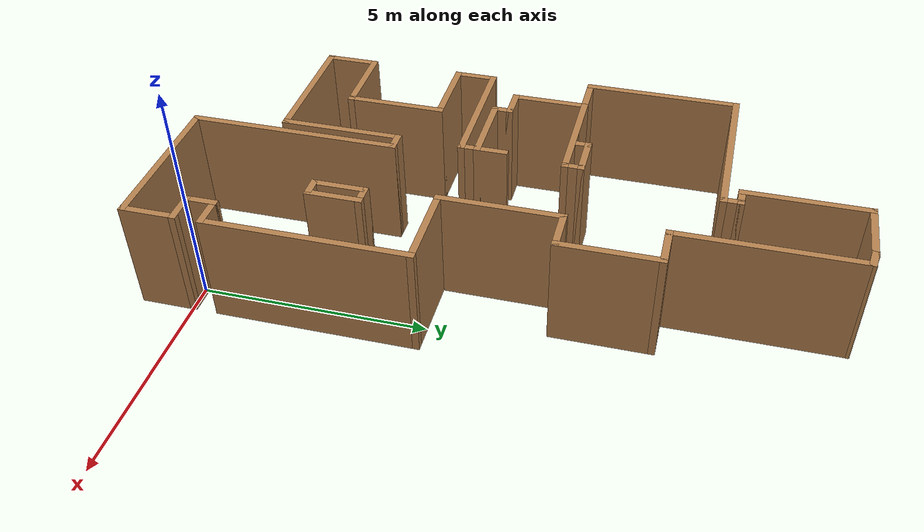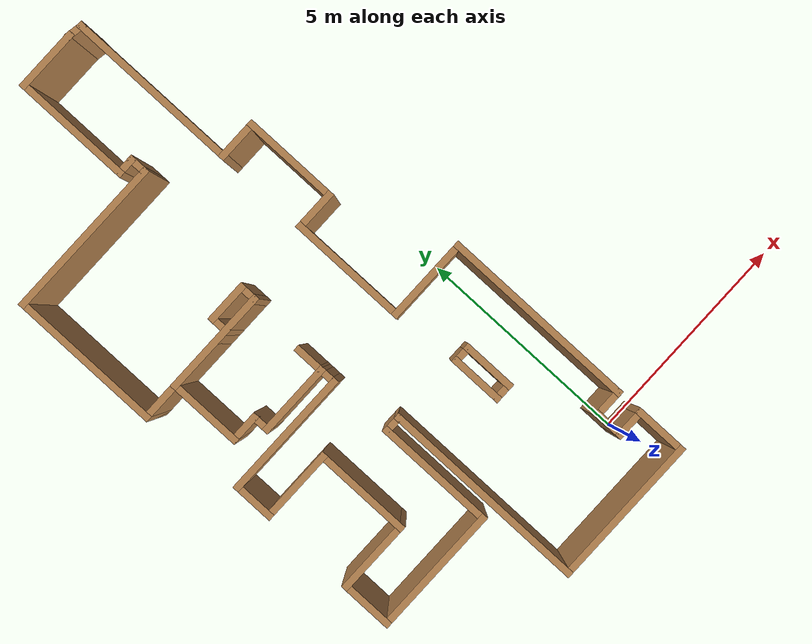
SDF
<?xml version='1.0'?>
<sdf version='1.6'>
  <model name='map_131'>
    <pose frame=''>-2.84517 6.23692 0 0 -0 0</pose>
    <link name='Wall_0'>
      <collision name='Wall_0_Collision'>
        <geometry>
          <box>
            <size>1.5 0.15 2.5</size>
          </box>
        </geometry>
        <pose frame=''>0 0 1.25 0 -0 0</pose>
      </collision>
      <visual name='Wall_0_Visual'>
        <pose frame=''>0 0 1.25 0 -0 0</pose>
        <geometry>
          <box>
            <size>1.5 0.15 2.5</size>
          </box>
        </geometry>
        <material>
          <script>
            <uri>file://media/materials/scripts/gazebo.material</uri>
            <name>Gazebo/Wood</name>
          </script>
          <ambient>1 1 1 1</ambient>
        </material>
        <meta>
          <layer>0</layer>
        </meta>
      </visual>
      <pose frame=''>0.55 7.31935 0 0 -0 3.14159</pose>
    </link>
    <link name='Wall_1'>
      <collision name='Wall_1_Collision'>
        <geometry>
          <box>
            <size>2.75 0.15 2.5</size>
          </box>
        </geometry>
        <pose frame=''>0 0 1.25 0 -0 0</pose>
      </collision>
      <visual name='Wall_1_Visual'>
        <pose frame=''>0 0 1.25 0 -0 0</pose>
        <geometry>
          <box>
            <size>2.75 0.15 2.5</size>
          </box>
        </geometry>
        <material>
          <script>
            <uri>file://media/materials/scripts/gazebo.material</uri>
            <name>Gazebo/Wood</name>
          </script>
          <ambient>1 1 1 1</ambient>
        </material>
        <meta>
          <layer>0</layer>
        </meta>
      </visual>
      <pose frame=''>-0.125 6.01935 0 0 -0 -1.5708</pose>
    </link>
    <link name='Wall_10'>
      <collision name='Wall_10_Collision'>
        <geometry>
          <box>
            <size>1 0.15 2.5</size>
          </box>
        </geometry>
        <pose frame=''>0 0 1.25 0 -0 0</pose>
      </collision>
      <visual name='Wall_10_Visual'>
        <pose frame=''>0 0 1.25 0 -0 0</pose>
        <geometry>
          <box>
            <size>1 0.15 2.5</size>
          </box>
        </geometry>
        <material>
          <script>
            <uri>file://media/materials/scripts/gazebo.material</uri>
            <name>Gazebo/Wood</name>
          </script>
          <ambient>1 1 1 1</ambient>
        </material>
        <meta>
          <layer>0</layer>
        </meta>
      </visual>
      <pose frame=''>-0.6 1.36935 0 0 -0 0</pose>
    </link>
    <link name='Wall_11'>
      <collision name='Wall_11_Collision'>
        <geometry>
          <box>
            <size>0.5 0.15 2.5</size>
          </box>
        </geometry>
        <pose frame=''>0 0 1.25 0 -0 0</pose>
      </collision>
      <visual name='Wall_11_Visual'>
        <pose frame=''>0 0 1.25 0 -0 0</pose>
        <geometry>
          <box>
            <size>0.5 0.15 2.5</size>
          </box>
        </geometry>
        <material>
          <script>
            <uri>file://media/materials/scripts/gazebo.material</uri>
            <name>Gazebo/Wood</name>
          </script>
          <ambient>1 1 1 1</ambient>
        </material>
        <meta>
          <layer>0</layer>
        </meta>
      </visual>
      <pose frame=''>-0.175 1.19434 0 0 -0 -1.5708</pose>
    </link>
    <link name='Wall_12'>
      <collision name='Wall_12_Collision'>
        <geometry>
          <box>
            <size>2.5 0.15 2.5</size>
          </box>
        </geometry>
        <pose frame=''>0 0 1.25 0 -0 0</pose>
      </collision>
      <visual name='Wall_12_Visual'>
        <pose frame=''>0 0 1.25 0 -0 0</pose>
        <geometry>
          <box>
            <size>2.5 0.15 2.5</size>
          </box>
        </geometry>
        <material>
          <script>
            <uri>file://media/materials/scripts/gazebo.material</uri>
            <name>Gazebo/Wood</name>
          </script>
          <ambient>1 1 1 1</ambient>
        </material>
        <meta>
          <layer>0</layer>
        </meta>
      </visual>
      <pose frame=''>-1.35 1.01935 0 0 -0 3.14159</pose>
    </link>
    <link name='Wall_13'>
      <collision name='Wall_13_Collision'>
        <geometry>
          <box>
            <size>1.75 0.15 2.5</size>
          </box>
        </geometry>
        <pose frame=''>0 0 1.25 0 -0 0</pose>
      </collision>
      <visual name='Wall_13_Visual'>
        <pose frame=''>0 0 1.25 0 -0 0</pose>
        <geometry>
          <box>
            <size>1.75 0.15 2.5</size>
          </box>
        </geometry>
        <material>
          <script>
            <uri>file://media/materials/scripts/gazebo.material</uri>
            <name>Gazebo/Wood</name>
          </script>
          <ambient>1 1 1 1</ambient>
        </material>
        <meta>
          <layer>0</layer>
        </meta>
      </visual>
      <pose frame=''>-2.525 0.219345 0 0 -0 -1.5708</pose>
    </link>
    <link name='Wall_14'>
      <collision name='Wall_14_Collision'>
        <geometry>
          <box>
            <size>0.75 0.15 2.5</size>
          </box>
        </geometry>
        <pose frame=''>0 0 1.25 0 -0 0</pose>
      </collision>
      <visual name='Wall_14_Visual'>
        <pose frame=''>0 0 1.25 0 -0 0</pose>
        <geometry>
          <box>
            <size>0.75 0.15 2.5</size>
          </box>
        </geometry>
        <material>
          <script>
            <uri>file://media/materials/scripts/gazebo.material</uri>
            <name>Gazebo/Wood</name>
          </script>
          <ambient>1 1 1 1</ambient>
        </material>
        <meta>
          <layer>0</layer>
        </meta>
      </visual>
      <pose frame=''>-2.225 -0.580654 0 0 -0 0</pose>
    </link>
    <link name='Wall_15'>
      <collision name='Wall_15_Collision'>
        <geometry>
          <box>
            <size>0.5 0.15 2.5</size>
          </box>
        </geometry>
        <pose frame=''>0 0 1.25 0 -0 0</pose>
      </collision>
      <visual name='Wall_15_Visual'>
        <pose frame=''>0 0 1.25 0 -0 0</pose>
        <geometry>
          <box>
            <size>0.5 0.15 2.5</size>
          </box>
        </geometry>
        <material>
          <script>
            <uri>file://media/materials/scripts/gazebo.material</uri>
            <name>Gazebo/Wood</name>
          </script>
          <ambient>1 1 1 1</ambient>
        </material>
        <meta>
          <layer>0</layer>
        </meta>
      </visual>
      <pose frame=''>-1.925 -0.755655 0 0 -0 -1.5708</pose>
    </link>
    <link name='Wall_16'>
      <collision name='Wall_16_Collision'>
        <geometry>
          <box>
            <size>1.75 0.15 2.5</size>
          </box>
        </geometry>
        <pose frame=''>0 0 1.25 0 -0 0</pose>
      </collision>
      <visual name='Wall_16_Visual'>
        <pose frame=''>0 0 1.25 0 -0 0</pose>
        <geometry>
          <box>
            <size>1.75 0.15 2.5</size>
          </box>
        </geometry>
        <material>
          <script>
            <uri>file://media/materials/scripts/gazebo.material</uri>
            <name>Gazebo/Wood</name>
          </script>
          <ambient>1 1 1 1</ambient>
        </material>
        <meta>
          <layer>0</layer>
        </meta>
      </visual>
      <pose frame=''>-1.125 -0.930655 0 0 -0 0</pose>
    </link>
    <link name='Wall_17'>
      <collision name='Wall_17_Collision'>
        <geometry>
          <box>
            <size>0.75 0.15 2.5</size>
          </box>
        </geometry>
        <pose frame=''>0 0 1.25 0 -0 0</pose>
      </collision>
      <visual name='Wall_17_Visual'>
        <pose frame=''>0 0 1.25 0 -0 0</pose>
        <geometry>
          <box>
            <size>0.75 0.15 2.5</size>
          </box>
        </geometry>
        <material>
          <script>
            <uri>file://media/materials/scripts/gazebo.material</uri>
            <name>Gazebo/Wood</name>
          </script>
          <ambient>1 1 1 1</ambient>
        </material>
        <meta>
          <layer>0</layer>
        </meta>
      </visual>
      <pose frame=''>-0.325 -0.630655 0 0 -0 1.5708</pose>
    </link>
    <link name='Wall_19'>
      <collision name='Wall_19_Collision'>
        <geometry>
          <box>
            <size>0.5 0.15 2.5</size>
          </box>
        </geometry>
        <pose frame=''>0 0 1.25 0 -0 0</pose>
      </collision>
      <visual name='Wall_19_Visual'>
        <pose frame=''>0 0 1.25 0 -0 0</pose>
        <geometry>
          <box>
            <size>0.5 0.15 2.5</size>
          </box>
        </geometry>
        <material>
          <script>
            <uri>file://media/materials/scripts/gazebo.material</uri>
            <name>Gazebo/Wood</name>
          </script>
          <ambient>1 1 1 1</ambient>
        </material>
        <meta>
          <layer>0</layer>
        </meta>
      </visual>
      <pose frame=''>-0.325 -1.10565 0 0 -0 -1.5708</pose>
    </link>
    <link name='Wall_2'>
      <collision name='Wall_2_Collision'>
        <geometry>
          <box>
            <size>0.5 0.15 2.5</size>
          </box>
        </geometry>
        <pose frame=''>0 0 1.25 0 -0 0</pose>
      </collision>
      <visual name='Wall_2_Visual'>
        <pose frame=''>0 0 1.25 0 -0 0</pose>
        <geometry>
          <box>
            <size>0.5 0.15 2.5</size>
          </box>
        </geometry>
        <material>
          <script>
            <uri>file://media/materials/scripts/gazebo.material</uri>
            <name>Gazebo/Wood</name>
          </script>
          <ambient>1 1 1 1</ambient>
        </material>
        <meta>
          <layer>0</layer>
        </meta>
      </visual>
      <pose frame=''>0.05 4.71935 0 0 -0 0</pose>
    </link>
    <link name='Wall_20'>
      <collision name='Wall_20_Collision'>
        <geometry>
          <box>
            <size>3 0.15 2.5</size>
          </box>
        </geometry>
        <pose frame=''>0 0 1.25 0 -0 0</pose>
      </collision>
      <visual name='Wall_20_Visual'>
        <pose frame=''>0 0 1.25 0 -0 0</pose>
        <geometry>
          <box>
            <size>3 0.15 2.5</size>
          </box>
        </geometry>
        <material>
          <script>
            <uri>file://media/materials/scripts/gazebo.material</uri>
            <name>Gazebo/Wood</name>
          </script>
          <ambient>1 1 1 1</ambient>
        </material>
        <meta>
          <layer>0</layer>
        </meta>
      </visual>
      <pose frame=''>-1.75 -1.28066 0 0 -0 3.14159</pose>
    </link>
    <link name='Wall_21'>
      <collision name='Wall_21_Collision'>
        <geometry>
          <box>
            <size>1 0.15 2.5</size>
          </box>
        </geometry>
        <pose frame=''>0 0 1.25 0 -0 0</pose>
      </collision>
      <visual name='Wall_21_Visual'>
        <pose frame=''>0 0 1.25 0 -0 0</pose>
        <geometry>
          <box>
            <size>1 0.15 2.5</size>
          </box>
        </geometry>
        <material>
          <script>
            <uri>file://media/materials/scripts/gazebo.material</uri>
            <name>Gazebo/Wood</name>
          </script>
          <ambient>1 1 1 1</ambient>
        </material>
        <meta>
          <layer>0</layer>
        </meta>
      </visual>
      <pose frame=''>-3.175 -1.70565 0 0 -0 -1.5708</pose>
    </link>
    <link name='Wall_22'>
      <collision name='Wall_22_Collision'>
        <geometry>
          <box>
            <size>1.75 0.15 2.5</size>
          </box>
        </geometry>
        <pose frame=''>0 0 1.25 0 -0 0</pose>
      </collision>
      <visual name='Wall_22_Visual'>
        <pose frame=''>0 0 1.25 0 -0 0</pose>
        <geometry>
          <box>
            <size>1.75 0.15 2.5</size>
          </box>
        </geometry>
        <material>
          <script>
            <uri>file://media/materials/scripts/gazebo.material</uri>
            <name>Gazebo/Wood</name>
          </script>
          <ambient>1 1 1 1</ambient>
        </material>
        <meta>
          <layer>0</layer>
        </meta>
      </visual>
      <pose frame=''>-2.375 -2.13065 0 0 -0 0</pose>
    </link>
    <link name='Wall_23'>
      <collision name='Wall_23_Collision'>
        <geometry>
          <box>
            <size>2.25 0.15 2.5</size>
          </box>
        </geometry>
        <pose frame=''>0 0 1.25 0 -0 0</pose>
      </collision>
      <visual name='Wall_23_Visual'>
        <pose frame=''>0 0 1.25 0 -0 0</pose>
        <geometry>
          <box>
            <size>2.25 0.15 2.5</size>
          </box>
        </geometry>
        <material>
          <script>
            <uri>file://media/materials/scripts/gazebo.material</uri>
            <name>Gazebo/Wood</name>
          </script>
          <ambient>1 1 1 1</ambient>
        </material>
        <meta>
          <layer>0</layer>
        </meta>
      </visual>
      <pose frame=''>-1.575 -3.18065 0 0 -0 -1.5708</pose>
    </link>
    <link name='Wall_24'>
      <collision name='Wall_24_Collision'>
        <geometry>
          <box>
            <size>1.75 0.15 2.5</size>
          </box>
        </geometry>
        <pose frame=''>0 0 1.25 0 -0 0</pose>
      </collision>
      <visual name='Wall_24_Visual'>
        <pose frame=''>0 0 1.25 0 -0 0</pose>
        <geometry>
          <box>
            <size>1.75 0.15 2.5</size>
          </box>
        </geometry>
        <material>
          <script>
            <uri>file://media/materials/scripts/gazebo.material</uri>
            <name>Gazebo/Wood</name>
          </script>
          <ambient>1 1 1 1</ambient>
        </material>
        <meta>
          <layer>0</layer>
        </meta>
      </visual>
      <pose frame=''>-2.375 -4.23065 0 0 -0 3.14159</pose>
    </link>
    <link name='Wall_25'>
      <collision name='Wall_25_Collision'>
        <geometry>
          <box>
            <size>1.25 0.15 2.5</size>
          </box>
        </geometry>
        <pose frame=''>0 0 1.25 0 -0 0</pose>
      </collision>
      <visual name='Wall_25_Visual'>
        <pose frame=''>0 0 1.25 0 -0 0</pose>
        <geometry>
          <box>
            <size>1.25 0.15 2.5</size>
          </box>
        </geometry>
        <material>
          <script>
            <uri>file://media/materials/scripts/gazebo.material</uri>
            <name>Gazebo/Wood</name>
          </script>
          <ambient>1 1 1 1</ambient>
        </material>
        <meta>
          <layer>0</layer>
        </meta>
      </visual>
      <pose frame=''>-3.175 -4.78065 0 0 -0 -1.5708</pose>
    </link>
    <link name='Wall_26'>
      <collision name='Wall_26_Collision'>
        <geometry>
          <box>
            <size>3 0.15 2.5</size>
          </box>
        </geometry>
        <pose frame=''>0 0 1.25 0 -0 0</pose>
      </collision>
      <visual name='Wall_26_Visual'>
        <pose frame=''>0 0 1.25 0 -0 0</pose>
        <geometry>
          <box>
            <size>3 0.15 2.5</size>
          </box>
        </geometry>
        <material>
          <script>
            <uri>file://media/materials/scripts/gazebo.material</uri>
            <name>Gazebo/Wood</name>
          </script>
          <ambient>1 1 1 1</ambient>
        </material>
        <meta>
          <layer>0</layer>
        </meta>
      </visual>
      <pose frame=''>-1.75 -5.33066 0 0 -0 0</pose>
    </link>
    <link name='Wall_27'>
      <collision name='Wall_27_Collision'>
        <geometry>
          <box>
            <size>2.75 0.15 2.5</size>
          </box>
        </geometry>
        <pose frame=''>0 0 1.25 0 -0 0</pose>
      </collision>
      <visual name='Wall_27_Visual'>
        <pose frame=''>0 0 1.25 0 -0 0</pose>
        <geometry>
          <box>
            <size>2.75 0.15 2.5</size>
          </box>
        </geometry>
        <material>
          <script>
            <uri>file://media/materials/scripts/gazebo.material</uri>
            <name>Gazebo/Wood</name>
          </script>
          <ambient>1 1 1 1</ambient>
        </material>
        <meta>
          <layer>0</layer>
        </meta>
      </visual>
      <pose frame=''>-0.325 -4.03066 0 0 -0 1.5708</pose>
    </link>
    <link name='Wall_28'>
      <collision name='Wall_28_Collision'>
        <geometry>
          <box>
            <size>0.5 0.15 2.5</size>
          </box>
        </geometry>
        <pose frame=''>0 0 1.25 0 -0 0</pose>
      </collision>
      <visual name='Wall_28_Visual'>
        <pose frame=''>0 0 1.25 0 -0 0</pose>
        <geometry>
          <box>
            <size>0.5 0.15 2.5</size>
          </box>
        </geometry>
        <material>
          <script>
            <uri>file://media/materials/scripts/gazebo.material</uri>
            <name>Gazebo/Wood</name>
          </script>
          <ambient>1 1 1 1</ambient>
        </material>
        <meta>
          <layer>0</layer>
        </meta>
      </visual>
      <pose frame=''>-0.15 -2.73065 0 0 -0 0</pose>
    </link>
    <link name='Wall_29'>
      <collision name='Wall_29_Collision'>
        <geometry>
          <box>
            <size>4.75 0.15 2.5</size>
          </box>
        </geometry>
        <pose frame=''>0 0 1.25 0 -0 0</pose>
      </collision>
      <visual name='Wall_29_Visual'>
        <pose frame=''>0 0 1.25 0 -0 0</pose>
        <geometry>
          <box>
            <size>4.75 0.15 2.5</size>
          </box>
        </geometry>
        <material>
          <script>
            <uri>file://media/materials/scripts/gazebo.material</uri>
            <name>Gazebo/Wood</name>
          </script>
          <ambient>1 1 1 1</ambient>
        </material>
        <meta>
          <layer>0</layer>
        </meta>
      </visual>
      <pose frame=''>0.025 -5.03065 0 0 -0 -1.5708</pose>
    </link>
    <link name='Wall_3'>
      <collision name='Wall_3_Collision'>
        <geometry>
          <box>
            <size>0.5 0.15 2.5</size>
          </box>
        </geometry>
        <pose frame=''>0 0 1.25 0 -0 0</pose>
      </collision>
      <visual name='Wall_3_Visual'>
        <pose frame=''>0 0 1.25 0 -0 0</pose>
        <geometry>
          <box>
            <size>0.5 0.15 2.5</size>
          </box>
        </geometry>
        <material>
          <script>
            <uri>file://media/materials/scripts/gazebo.material</uri>
            <name>Gazebo/Wood</name>
          </script>
          <ambient>1 1 1 1</ambient>
        </material>
        <meta>
          <layer>0</layer>
        </meta>
      </visual>
      <pose frame=''>0.225 4.54435 0 0 -0 -1.5708</pose>
    </link>
    <link name='Wall_30'>
      <collision name='Wall_30_Collision'>
        <geometry>
          <box>
            <size>3.5 0.15 2.5</size>
          </box>
        </geometry>
        <pose frame=''>0 0 1.25 0 -0 0</pose>
      </collision>
      <visual name='Wall_30_Visual'>
        <pose frame=''>0 0 1.25 0 -0 0</pose>
        <geometry>
          <box>
            <size>3.5 0.15 2.5</size>
          </box>
        </geometry>
        <material>
          <script>
            <uri>file://media/materials/scripts/gazebo.material</uri>
            <name>Gazebo/Wood</name>
          </script>
          <ambient>1 1 1 1</ambient>
        </material>
        <meta>
          <layer>0</layer>
        </meta>
      </visual>
      <pose frame=''>1.7 -7.33065 0 0 -0 0</pose>
    </link>
    <link name='Wall_31'>
      <collision name='Wall_31_Collision'>
        <geometry>
          <box>
            <size>1.25 0.15 2.5</size>
          </box>
        </geometry>
        <pose frame=''>0 0 1.25 0 -0 0</pose>
      </collision>
      <visual name='Wall_31_Visual'>
        <pose frame=''>0 0 1.25 0 -0 0</pose>
        <geometry>
          <box>
            <size>1.25 0.15 2.5</size>
          </box>
        </geometry>
        <material>
          <script>
            <uri>file://media/materials/scripts/gazebo.material</uri>
            <name>Gazebo/Wood</name>
          </script>
          <ambient>1 1 1 1</ambient>
        </material>
        <meta>
          <layer>0</layer>
        </meta>
      </visual>
      <pose frame=''>3.375 -6.78065 0 0 -0 1.5708</pose>
    </link>
    <link name='Wall_32'>
      <collision name='Wall_32_Collision'>
        <geometry>
          <box>
            <size>0.75 0.15 2.5</size>
          </box>
        </geometry>
        <pose frame=''>0 0 1.25 0 -0 0</pose>
      </collision>
      <visual name='Wall_32_Visual'>
        <pose frame=''>0 0 1.25 0 -0 0</pose>
        <geometry>
          <box>
            <size>0.75 0.15 2.5</size>
          </box>
        </geometry>
        <material>
          <script>
            <uri>file://media/materials/scripts/gazebo.material</uri>
            <name>Gazebo/Wood</name>
          </script>
          <ambient>1 1 1 1</ambient>
        </material>
        <meta>
          <layer>0</layer>
        </meta>
      </visual>
      <pose frame=''>3.075 -6.23065 0 0 -0 3.14159</pose>
    </link>
    <link name='Wall_33'>
      <collision name='Wall_33_Collision'>
        <geometry>
          <box>
            <size>0.75 0.15 2.5</size>
          </box>
        </geometry>
        <pose frame=''>0 0 1.25 0 -0 0</pose>
      </collision>
      <visual name='Wall_33_Visual'>
        <pose frame=''>0 0 1.25 0 -0 0</pose>
        <geometry>
          <box>
            <size>0.75 0.15 2.5</size>
          </box>
        </geometry>
        <material>
          <script>
            <uri>file://media/materials/scripts/gazebo.material</uri>
            <name>Gazebo/Wood</name>
          </script>
          <ambient>1 1 1 1</ambient>
        </material>
        <meta>
          <layer>0</layer>
        </meta>
      </visual>
      <pose frame=''>2.775 -5.93065 0 0 -0 1.5708</pose>
    </link>
    <link name='Wall_34'>
      <collision name='Wall_34_Collision'>
        <geometry>
          <box>
            <size>0.75 0.15 2.5</size>
          </box>
        </geometry>
        <pose frame=''>0 0 1.25 0 -0 0</pose>
      </collision>
      <visual name='Wall_34_Visual'>
        <pose frame=''>0 0 1.25 0 -0 0</pose>
        <geometry>
          <box>
            <size>0.75 0.15 2.5</size>
          </box>
        </geometry>
        <material>
          <script>
            <uri>file://media/materials/scripts/gazebo.material</uri>
            <name>Gazebo/Wood</name>
          </script>
          <ambient>1 1 1 1</ambient>
        </material>
        <meta>
          <layer>0</layer>
        </meta>
      </visual>
      <pose frame=''>3.075 -5.63065 0 0 -0 0</pose>
    </link>
    <link name='Wall_35'>
      <collision name='Wall_35_Collision'>
        <geometry>
          <box>
            <size>4.5 0.15 2.5</size>
          </box>
        </geometry>
        <pose frame=''>0 0 1.25 0 -0 0</pose>
      </collision>
      <visual name='Wall_35_Visual'>
        <pose frame=''>0 0 1.25 0 -0 0</pose>
        <geometry>
          <box>
            <size>4.5 0.15 2.5</size>
          </box>
        </geometry>
        <material>
          <script>
            <uri>file://media/materials/scripts/gazebo.material</uri>
            <name>Gazebo/Wood</name>
          </script>
          <ambient>1 1 1 1</ambient>
        </material>
        <meta>
          <layer>0</layer>
        </meta>
      </visual>
      <pose frame=''>3.375 -3.45566 0 0 -0 1.5708</pose>
    </link>
    <link name='Wall_36'>
      <collision name='Wall_36_Collision'>
        <geometry>
          <box>
            <size>2 0.15 2.5</size>
          </box>
        </geometry>
        <pose frame=''>0 0 1.25 0 -0 0</pose>
      </collision>
      <visual name='Wall_36_Visual'>
        <pose frame=''>0 0 1.25 0 -0 0</pose>
        <geometry>
          <box>
            <size>2 0.15 2.5</size>
          </box>
        </geometry>
        <material>
          <script>
            <uri>file://media/materials/scripts/gazebo.material</uri>
            <name>Gazebo/Wood</name>
          </script>
          <ambient>1 1 1 1</ambient>
        </material>
        <meta>
          <layer>0</layer>
        </meta>
      </visual>
      <pose frame=''>2.45 -1.28066 0 0 -0 3.14159</pose>
    </link>
    <link name='Wall_37'>
      <collision name='Wall_37_Collision'>
        <geometry>
          <box>
            <size>2.75 0.15 2.5</size>
          </box>
        </geometry>
        <pose frame=''>0 0 1.25 0 -0 0</pose>
      </collision>
      <visual name='Wall_37_Visual'>
        <pose frame=''>0 0 1.25 0 -0 0</pose>
        <geometry>
          <box>
            <size>2.75 0.15 2.5</size>
          </box>
        </geometry>
        <material>
          <script>
            <uri>file://media/materials/scripts/gazebo.material</uri>
            <name>Gazebo/Wood</name>
          </script>
          <ambient>1 1 1 1</ambient>
        </material>
        <meta>
          <layer>0</layer>
        </meta>
      </visual>
      <pose frame=''>1.525 0.019346 0 0 -0 1.5708</pose>
    </link>
    <link name='Wall_38'>
      <collision name='Wall_38_Collision'>
        <geometry>
          <box>
            <size>1 0.15 2.5</size>
          </box>
        </geometry>
        <pose frame=''>0 0 1.25 0 -0 0</pose>
      </collision>
      <visual name='Wall_38_Visual'>
        <pose frame=''>0 0 1.25 0 -0 0</pose>
        <geometry>
          <box>
            <size>1 0.15 2.5</size>
          </box>
        </geometry>
        <material>
          <script>
            <uri>file://media/materials/scripts/gazebo.material</uri>
            <name>Gazebo/Wood</name>
          </script>
          <ambient>1 1 1 1</ambient>
        </material>
        <meta>
          <layer>0</layer>
        </meta>
      </visual>
      <pose frame=''>1.95 1.31934 0 0 -0 0</pose>
    </link>
    <link name='Wall_39'>
      <collision name='Wall_39_Collision'>
        <geometry>
          <box>
            <size>2.25 0.15 2.5</size>
          </box>
        </geometry>
        <pose frame=''>0 0 1.25 0 -0 0</pose>
      </collision>
      <visual name='Wall_39_Visual'>
        <pose frame=''>0 0 1.25 0 -0 0</pose>
        <geometry>
          <box>
            <size>2.25 0.15 2.5</size>
          </box>
        </geometry>
        <material>
          <script>
            <uri>file://media/materials/scripts/gazebo.material</uri>
            <name>Gazebo/Wood</name>
          </script>
          <ambient>1 1 1 1</ambient>
        </material>
        <meta>
          <layer>0</layer>
        </meta>
      </visual>
      <pose frame=''>2.375 2.36935 0 0 -0 1.5708</pose>
    </link>
    <link name='Wall_4'>
      <collision name='Wall_4_Collision'>
        <geometry>
          <box>
            <size>3.75 0.15 2.5</size>
          </box>
        </geometry>
        <pose frame=''>0 0 1.25 0 -0 0</pose>
      </collision>
      <visual name='Wall_4_Visual'>
        <pose frame=''>0 0 1.25 0 -0 0</pose>
        <geometry>
          <box>
            <size>3.75 0.15 2.5</size>
          </box>
        </geometry>
        <material>
          <script>
            <uri>file://media/materials/scripts/gazebo.material</uri>
            <name>Gazebo/Wood</name>
          </script>
          <ambient>1 1 1 1</ambient>
        </material>
        <meta>
          <layer>0</layer>
        </meta>
      </visual>
      <pose frame=''>-1.575 4.36935 0 0 -0 3.14159</pose>
    </link>
    <link name='Wall_40'>
      <collision name='Wall_40_Collision'>
        <geometry>
          <box>
            <size>1 0.15 2.5</size>
          </box>
        </geometry>
        <pose frame=''>0 0 1.25 0 -0 0</pose>
      </collision>
      <visual name='Wall_40_Visual'>
        <pose frame=''>0 0 1.25 0 -0 0</pose>
        <geometry>
          <box>
            <size>1 0.15 2.5</size>
          </box>
        </geometry>
        <material>
          <script>
            <uri>file://media/materials/scripts/gazebo.material</uri>
            <name>Gazebo/Wood</name>
          </script>
          <ambient>1 1 1 1</ambient>
        </material>
        <meta>
          <layer>0</layer>
        </meta>
      </visual>
      <pose frame=''>1.95 3.41935 0 0 -0 3.14159</pose>
    </link>
    <link name='Wall_41'>
      <collision name='Wall_41_Collision'>
        <geometry>
          <box>
            <size>4 0.15 2.5</size>
          </box>
        </geometry>
        <pose frame=''>0 0 1.25 0 -0 0</pose>
      </collision>
      <visual name='Wall_41_Visual'>
        <pose frame=''>0 0 1.25 0 -0 0</pose>
        <geometry>
          <box>
            <size>4 0.15 2.5</size>
          </box>
        </geometry>
        <material>
          <script>
            <uri>file://media/materials/scripts/gazebo.material</uri>
            <name>Gazebo/Wood</name>
          </script>
          <ambient>1 1 1 1</ambient>
        </material>
        <meta>
          <layer>0</layer>
        </meta>
      </visual>
      <pose frame=''>1.525 5.34435 0 0 -0 1.5708</pose>
    </link>
    <link name='Wall_42'>
      <collision name='Wall_42_Collision'>
        <geometry>
          <box>
            <size>0.454138 0.15 2.5</size>
          </box>
        </geometry>
        <pose frame=''>0 0 1.25 0 -0 0</pose>
      </collision>
      <visual name='Wall_42_Visual'>
        <pose frame=''>0 0 1.25 0 -0 0</pose>
        <geometry>
          <box>
            <size>0.454138 0.15 2.5</size>
          </box>
        </geometry>
        <material>
          <script>
            <uri>file://media/materials/scripts/gazebo.material</uri>
            <name>Gazebo/Wood</name>
          </script>
          <ambient>1 1 1 1</ambient>
        </material>
        <meta>
          <layer>0</layer>
        </meta>
      </visual>
      <pose frame=''>1.375 7.29435 0 0 -0 2.97644</pose>
    </link>
    <link name='Wall_44'>
      <collision name='Wall_44_Collision'>
        <geometry>
          <box>
            <size>1.25 0.15 2.5</size>
          </box>
        </geometry>
        <pose frame=''>0 0 1.25 0 -0 0</pose>
      </collision>
      <visual name='Wall_44_Visual'>
        <pose frame=''>0 0 1.25 0 -0 0</pose>
        <geometry>
          <box>
            <size>1.25 0.15 2.5</size>
          </box>
        </geometry>
        <material>
          <script>
            <uri>file://media/materials/scripts/gazebo.material</uri>
            <name>Gazebo/Wood</name>
          </script>
          <ambient>1 1 1 1</ambient>
        </material>
        <meta>
          <layer>0</layer>
        </meta>
      </visual>
      <pose frame=''>1.64715 -3.36214 0 0 -0 -1.5708</pose>
    </link>
    <link name='Wall_45'>
      <collision name='Wall_45_Collision'>
        <geometry>
          <box>
            <size>0.5 0.15 2.5</size>
          </box>
        </geometry>
        <pose frame=''>0 0 1.25 0 -0 0</pose>
      </collision>
      <visual name='Wall_45_Visual'>
        <pose frame=''>0 0 1.25 0 -0 0</pose>
        <geometry>
          <box>
            <size>0.5 0.15 2.5</size>
          </box>
        </geometry>
        <material>
          <script>
            <uri>file://media/materials/scripts/gazebo.material</uri>
            <name>Gazebo/Wood</name>
          </script>
          <ambient>1 1 1 1</ambient>
        </material>
        <meta>
          <layer>0</layer>
        </meta>
      </visual>
      <pose frame=''>1.82214 -3.91214 0 0 -0 0</pose>
    </link>
    <link name='Wall_46'>
      <collision name='Wall_46_Collision'>
        <geometry>
          <box>
            <size>1.25 0.15 2.5</size>
          </box>
        </geometry>
        <pose frame=''>0 0 1.25 0 -0 0</pose>
      </collision>
      <visual name='Wall_46_Visual'>
        <pose frame=''>0 0 1.25 0 -0 0</pose>
        <geometry>
          <box>
            <size>1.25 0.15 2.5</size>
          </box>
        </geometry>
        <material>
          <script>
            <uri>file://media/materials/scripts/gazebo.material</uri>
            <name>Gazebo/Wood</name>
          </script>
          <ambient>1 1 1 1</ambient>
        </material>
        <meta>
          <layer>0</layer>
        </meta>
      </visual>
      <pose frame=''>1.99714 -3.36214 0 0 -0 1.5708</pose>
    </link>
    <link name='Wall_47'>
      <collision name='Wall_47_Collision'>
        <geometry>
          <box>
            <size>0.5 0.15 2.5</size>
          </box>
        </geometry>
        <pose frame=''>0 0 1.25 0 -0 0</pose>
      </collision>
      <visual name='Wall_47_Visual'>
        <pose frame=''>0 0 1.25 0 -0 0</pose>
        <geometry>
          <box>
            <size>0.5 0.15 2.5</size>
          </box>
        </geometry>
        <material>
          <script>
            <uri>file://media/materials/scripts/gazebo.material</uri>
            <name>Gazebo/Wood</name>
          </script>
          <ambient>1 1 1 1</ambient>
        </material>
        <meta>
          <layer>0</layer>
        </meta>
      </visual>
      <pose frame=''>1.82214 -2.81214 0 0 -0 3.14159</pose>
    </link>
    <link name='Wall_5'>
      <collision name='Wall_5_Collision'>
        <geometry>
          <box>
            <size>3.5 0.15 2.5</size>
          </box>
        </geometry>
        <pose frame=''>0 0 1.25 0 -0 0</pose>
      </collision>
      <visual name='Wall_5_Visual'>
        <pose frame=''>0 0 1.25 0 -0 0</pose>
        <geometry>
          <box>
            <size>3.5 0.15 2.5</size>
          </box>
        </geometry>
        <material>
          <script>
            <uri>file://media/materials/scripts/gazebo.material</uri>
            <name>Gazebo/Wood</name>
          </script>
          <ambient>1 1 1 1</ambient>
        </material>
        <meta>
          <layer>0</layer>
        </meta>
      </visual>
      <pose frame=''>-3.375 2.69435 0 0 -0 -1.5708</pose>
    </link>
    <link name='Wall_6'>
      <collision name='Wall_6_Collision'>
        <geometry>
          <box>
            <size>2.5 0.15 2.5</size>
          </box>
        </geometry>
        <pose frame=''>0 0 1.25 0 -0 0</pose>
      </collision>
      <visual name='Wall_6_Visual'>
        <pose frame=''>0 0 1.25 0 -0 0</pose>
        <geometry>
          <box>
            <size>2.5 0.15 2.5</size>
          </box>
        </geometry>
        <material>
          <script>
            <uri>file://media/materials/scripts/gazebo.material</uri>
            <name>Gazebo/Wood</name>
          </script>
          <ambient>1 1 1 1</ambient>
        </material>
        <meta>
          <layer>0</layer>
        </meta>
      </visual>
      <pose frame=''>-2.2 1.01935 0 0 -0 0</pose>
    </link>
    <link name='Wall_9'>
      <collision name='Wall_9_Collision'>
        <geometry>
          <box>
            <size>0.5 0.15 2.5</size>
          </box>
        </geometry>
        <pose frame=''>0 0 1.25 0 -0 0</pose>
      </collision>
      <visual name='Wall_9_Visual'>
        <pose frame=''>0 0 1.25 0 -0 0</pose>
        <geometry>
          <box>
            <size>0.5 0.15 2.5</size>
          </box>
        </geometry>
        <material>
          <script>
            <uri>file://media/materials/scripts/gazebo.material</uri>
            <name>Gazebo/Wood</name>
          </script>
          <ambient>1 1 1 1</ambient>
        </material>
        <meta>
          <layer>0</layer>
        </meta>
      </visual>
      <pose frame=''>-1.025 1.19434 0 0 -0 1.5708</pose>
    </link>
    <static>1</static>
  </model>
</sdf>
